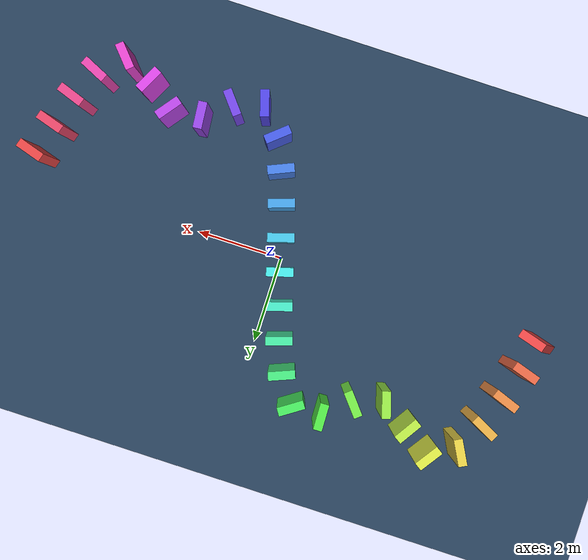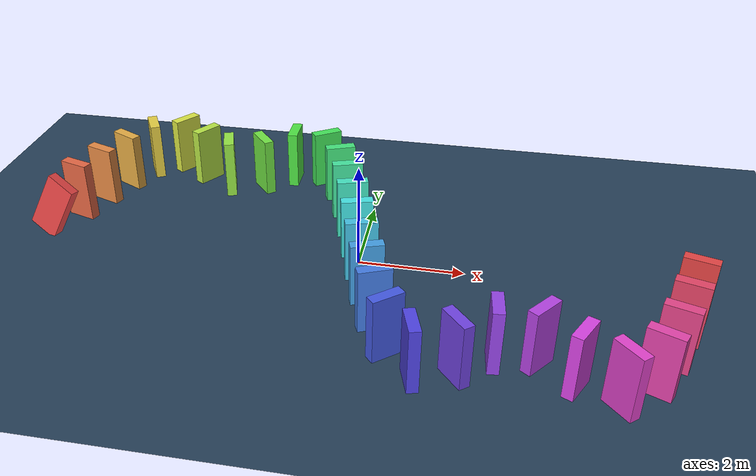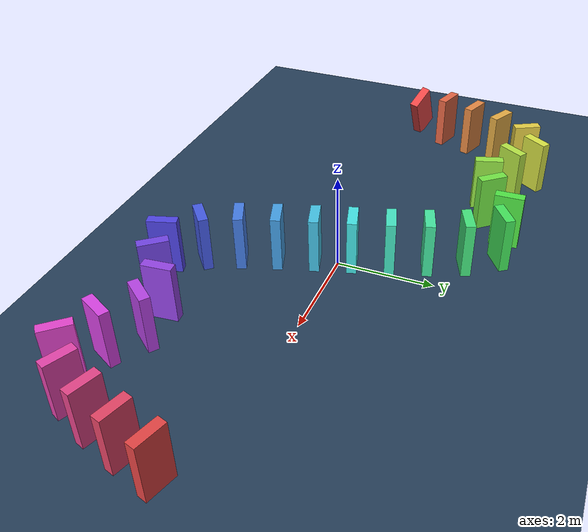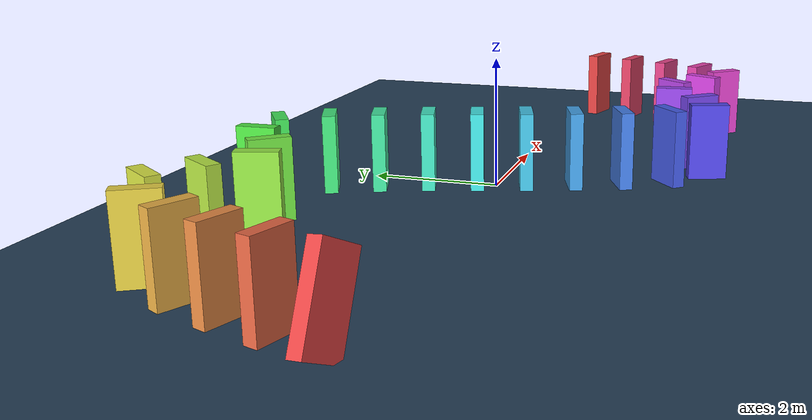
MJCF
<mujoco>
  <visual>
    <headlight diffuse="0.6 0.6 0.6" ambient="0.1 0.1 0.1" specular="0 0 0"/>
    <rgba haze="0.15 0.25 0.35 1"/>
    <global azimuth="120" elevation="-20"/>
  </visual>
  <asset>
    <texture type="skybox" builtin="gradient" rgb1="0.3 0.5 0.7" rgb2="0 0 0" width="512" height="3072"/>
    <texture type="2d" name="groundplane" builtin="checker" mark="edge" rgb1="0.2 0.3 0.4" rgb2="0.1 0.2 0.3" markrgb="0.8 0.8 0.8" width="300" height="300"/>
    <material name="groundplane" texture="groundplane" texuniform="true" texrepeat="5 5" reflectance="0.2"/>
  </asset>
  <worldbody>
    <light pos="0 0 1.5" dir="0 0 -1" directional="true"/>
    <geom name="floor" size="0 0 0.05" type="plane" material="groundplane"/>
    <body name="trigger" pos="-6.0750 0.0000 0.5767" euler="0 28.0 73.6">
      <geom type="box" size="0.1000 0.3000 0.6000" rgba="0.900 0.270 0.270 1"/>
      <freejoint/>
    </body>
    <body name="domino_001" pos="-5.8626 0.7193 0.6000" euler="0 0.0 72.5">
      <geom type="box" size="0.1000 0.3000 0.6000" rgba="0.900 0.405 0.270 1"/>
      <freejoint/>
    </body>
    <body name="domino_002" pos="-5.6376 1.4347 0.6000" euler="0 0.0 69.9">
      <geom type="box" size="0.1000 0.3000 0.6000" rgba="0.900 0.540 0.270 1"/>
      <freejoint/>
    </body>
    <body name="domino_003" pos="-5.3799 2.1389 0.6000" euler="0 0.0 62.8">
      <geom type="box" size="0.1000 0.3000 0.6000" rgba="0.900 0.675 0.270 1"/>
      <freejoint/>
    </body>
    <body name="domino_004" pos="-5.0374 2.8045 0.6000" euler="0 0.0 28.2">
      <geom type="box" size="0.1000 0.3000 0.6000" rgba="0.900 0.810 0.270 1"/>
      <freejoint/>
    </body>
    <body name="domino_005" pos="-4.4212 3.1353 0.6000" euler="0 0.0 -34.5">
      <geom type="box" size="0.1000 0.3000 0.6000" rgba="0.855 0.900 0.270 1"/>
      <freejoint/>
    </body>
    <body name="domino_006" pos="-3.8081 2.7147 0.6000" euler="0 0.0 -32.7">
      <geom type="box" size="0.1000 0.3000 0.6000" rgba="0.720 0.900 0.270 1"/>
      <freejoint/>
    </body>
    <body name="domino_007" pos="-3.1833 2.3129 0.6000" euler="0 0.0 17.1">
      <geom type="box" size="0.1000 0.3000 0.6000" rgba="0.585 0.900 0.270 1"/>
      <freejoint/>
    </body>
    <body name="domino_008" pos="-2.4925 2.5254 0.6000" euler="0 0.0 39.8">
      <geom type="box" size="0.1000 0.3000 0.6000" rgba="0.450 0.900 0.270 1"/>
      <freejoint/>
    </body>
    <body name="domino_009" pos="-1.9162 3.0048 0.6000" euler="0 0.0 1.7">
      <geom type="box" size="0.1000 0.3000 0.6000" rgba="0.315 0.900 0.270 1"/>
      <freejoint/>
    </body>
    <body name="domino_010" pos="-1.2315 3.0253 0.6000" euler="0 0.0 -55.9">
      <geom type="box" size="0.1000 0.3000 0.6000" rgba="0.270 0.900 0.360 1"/>
      <freejoint/>
    </body>
    <body name="domino_011" pos="-0.8140 2.4084 0.6000" euler="0 0.0 -68.0">
      <geom type="box" size="0.1000 0.3000 0.6000" rgba="0.270 0.900 0.495 1"/>
      <freejoint/>
    </body>
    <body name="domino_012" pos="-0.5330 1.7134 0.6000" euler="0 0.0 -71.8">
      <geom type="box" size="0.1000 0.3000 0.6000" rgba="0.270 0.900 0.630 1"/>
      <freejoint/>
    </body>
    <body name="domino_013" pos="-0.2984 1.0011 0.6000" euler="0 0.0 -73.3">
      <geom type="box" size="0.1000 0.3000 0.6000" rgba="0.270 0.900 0.765 1"/>
      <freejoint/>
    </body>
    <body name="domino_014" pos="-0.0828 0.2827 0.6000" euler="0 0.0 -73.7">
      <geom type="box" size="0.1000 0.3000 0.6000" rgba="0.270 0.900 0.900 1"/>
      <freejoint/>
    </body>
    <body name="domino_015" pos="0.1282 -0.4370 0.6000" euler="0 0.0 -73.1">
      <geom type="box" size="0.1000 0.3000 0.6000" rgba="0.270 0.765 0.900 1"/>
      <freejoint/>
    </body>
    <body name="domino_016" pos="0.3465 -1.1545 0.6000" euler="0 0.0 -71.2">
      <geom type="box" size="0.1000 0.3000 0.6000" rgba="0.270 0.630 0.900 1"/>
      <freejoint/>
    </body>
    <body name="domino_017" pos="0.5879 -1.8645 0.6000" euler="0 0.0 -66.6">
      <geom type="box" size="0.1000 0.3000 0.6000" rgba="0.270 0.495 0.900 1"/>
      <freejoint/>
    </body>
    <body name="domino_018" pos="0.8860 -2.5521 0.6000" euler="0 0.0 -49.4">
      <geom type="box" size="0.1000 0.3000 0.6000" rgba="0.270 0.360 0.900 1"/>
      <freejoint/>
    </body>
    <body name="domino_019" pos="1.3661 -3.1124 0.6000" euler="0 0.0 16.8">
      <geom type="box" size="0.1000 0.3000 0.6000" rgba="0.315 0.270 0.900 1"/>
      <freejoint/>
    </body>
    <body name="domino_020" pos="2.0441 -2.9074 0.6000" euler="0 0.0 39.3">
      <geom type="box" size="0.1000 0.3000 0.6000" rgba="0.450 0.270 0.900 1"/>
      <freejoint/>
    </body>
    <body name="domino_021" pos="2.6240 -2.4329 0.6000" euler="0 0.0 5.2">
      <geom type="box" size="0.1000 0.3000 0.6000" rgba="0.585 0.270 0.900 1"/>
      <freejoint/>
    </body>
    <body name="domino_022" pos="3.3342 -2.3678 0.6000" euler="0 0.0 -37.3">
      <geom type="box" size="0.1000 0.3000 0.6000" rgba="0.720 0.270 0.900 1"/>
      <freejoint/>
    </body>
    <body name="domino_023" pos="3.9288 -2.8209 0.6000" euler="0 0.0 -26.7">
      <geom type="box" size="0.1000 0.3000 0.6000" rgba="0.855 0.270 0.900 1"/>
      <freejoint/>
    </body>
    <body name="domino_024" pos="4.5806 -3.1482 0.6000" euler="0 0.0 41.4">
      <geom type="box" size="0.1000 0.3000 0.6000" rgba="0.900 0.270 0.810 1"/>
      <freejoint/>
    </body>
    <body name="domino_025" pos="5.1239 -2.6690 0.6000" euler="0 0.0 65.1">
      <geom type="box" size="0.1000 0.3000 0.6000" rgba="0.900 0.270 0.675 1"/>
      <freejoint/>
    </body>
    <body name="domino_026" pos="5.4396 -1.9896 0.6000" euler="0 0.0 70.7">
      <geom type="box" size="0.1000 0.3000 0.6000" rgba="0.900 0.270 0.540 1"/>
      <freejoint/>
    </body>
    <body name="domino_027" pos="5.6877 -1.2819 0.6000" euler="0 0.0 72.9">
      <geom type="box" size="0.1000 0.3000 0.6000" rgba="0.900 0.270 0.405 1"/>
      <freejoint/>
    </body>
    <body name="domino_028" pos="5.9088 -0.5653 0.6000" euler="0 0.0 72.9">
      <geom type="box" size="0.1000 0.3000 0.6000" rgba="0.900 0.270 0.270 1"/>
      <freejoint/>
    </body>
  </worldbody>
</mujoco>
